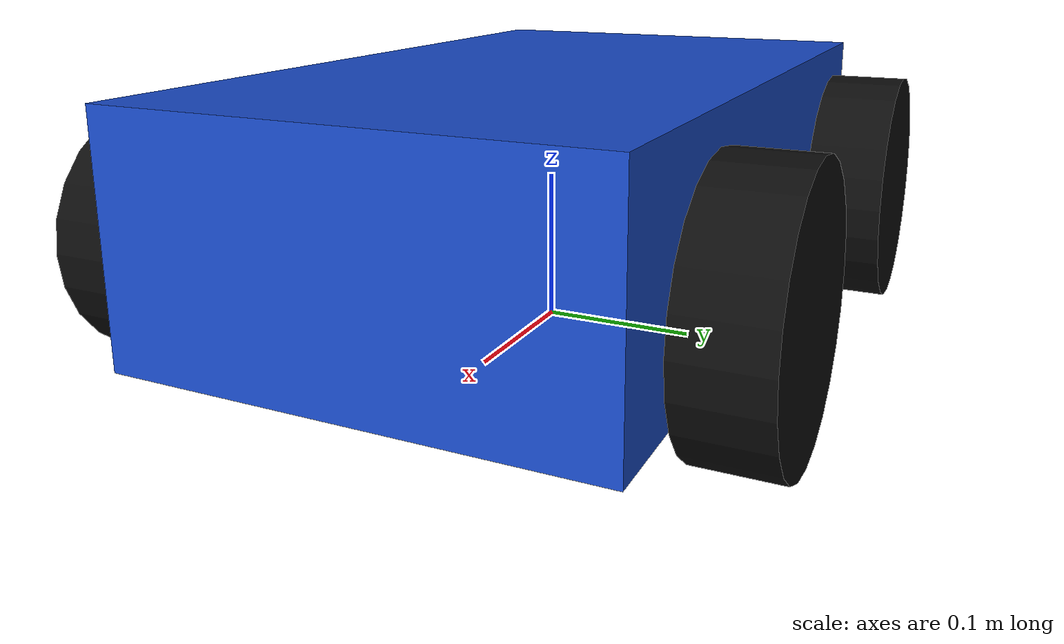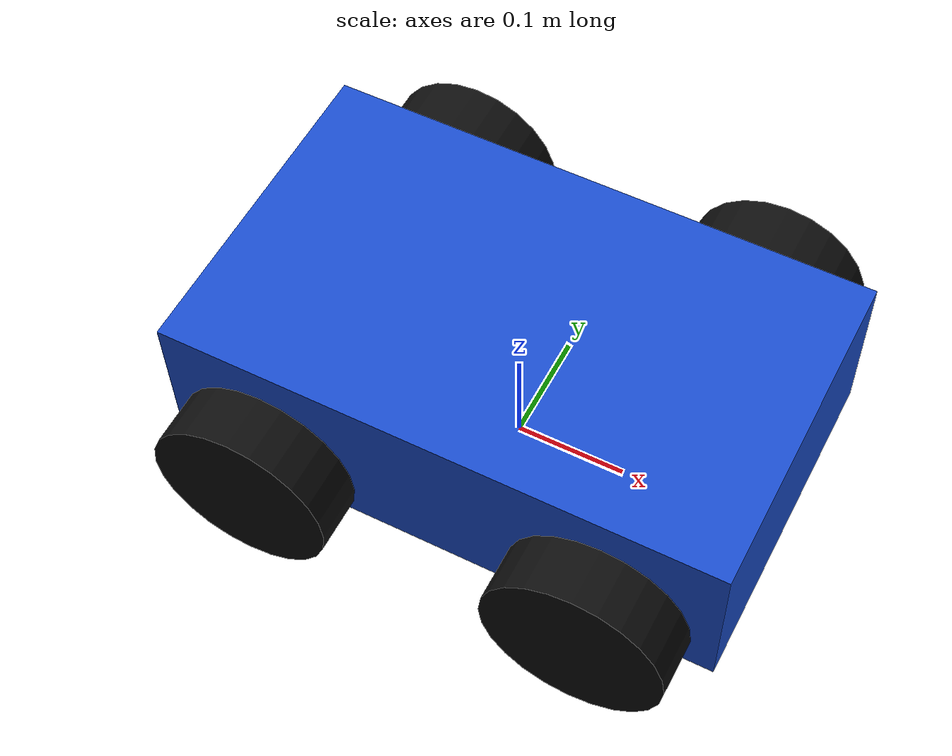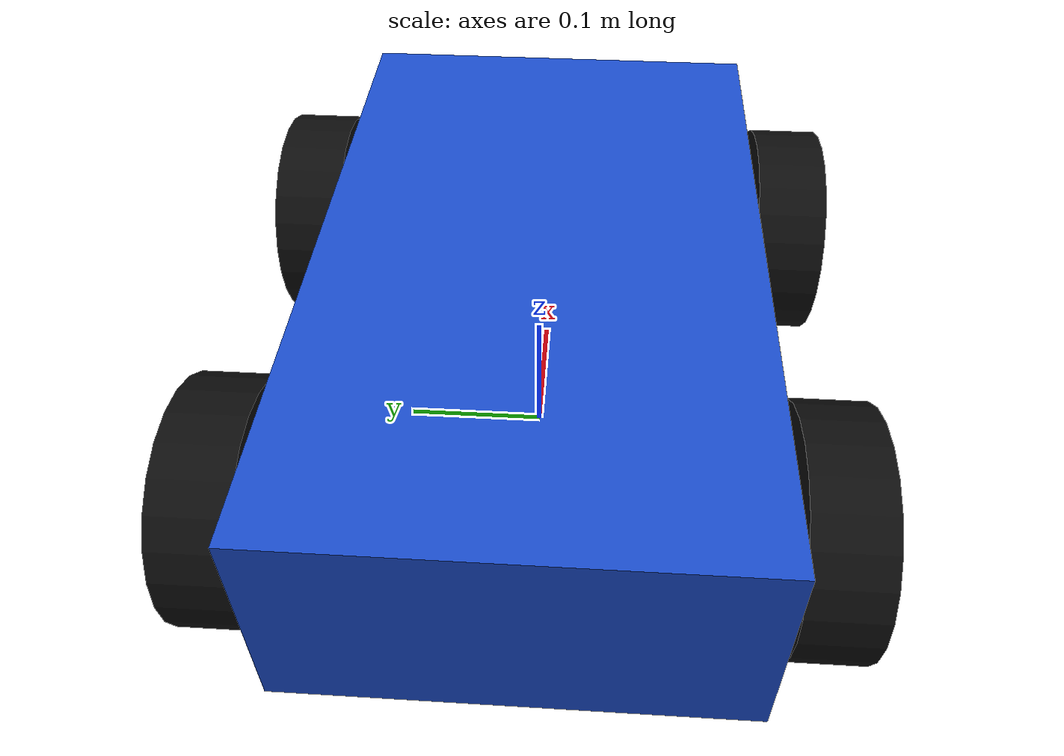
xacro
<?xml version="1.0"?>
<robot xmlns:xacro="http://www.ros.org/wiki/xacro" name="four_wheeled_robot">
  <!-- Dimensions, masses, and inertia macros. -->
  <xacro:include filename="properties.xacro"/>
  <!-- Named colours. -->
  <xacro:include filename="materials.xacro"/>
  <!-- base_footprint + base_link chassis. -->
  <xacro:include filename="chassis.xacro"/>
  <!-- The reusable wheel macro. -->
  <xacro:include filename="wheel.xacro"/>

  <!-- Four macro calls: front/rear come from the sign of x_offset, left/right
       from the sign of y_offset. Y is negated for the right-hand side. -->
  <xacro:wheel name="front_left_wheel" parent="base_link" x_offset="${wheel_offset_x}" y_offset="${wheel_offset_y}" z_offset="${wheel_offset_z}"/>
  <xacro:wheel name="front_right_wheel" parent="base_link" x_offset="${wheel_offset_x}" y_offset="-${wheel_offset_y}" z_offset="${wheel_offset_z}"/>
  <xacro:wheel name="rear_left_wheel" parent="base_link" x_offset="-${wheel_offset_x}" y_offset="${wheel_offset_y}" z_offset="${wheel_offset_z}"/>
  <xacro:wheel name="rear_right_wheel" parent="base_link" x_offset="-${wheel_offset_x}" y_offset="-${wheel_offset_y}" z_offset="${wheel_offset_z}"/>
</robot>

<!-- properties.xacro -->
<robot xmlns:xacro="http://www.ros.org/wiki/xacro">
  <!-- Pi, needed for the wheel cylinder roll angle (pi/2 = 90 deg). -->
  <xacro:property name="pi_val" value="3.1415926535897931"/>

  <!-- Chassis box: 0.5 x 0.3 x 0.15 m, 5 kg, raised 0.10 m above the ground. -->
  <xacro:property name="chassis_length" value="0.5"/>
  <xacro:property name="chassis_width" value="0.3"/>
  <xacro:property name="chassis_height" value="0.15"/>
  <xacro:property name="chassis_mass" value="5.0"/>
  <xacro:property name="chassis_elevation" value="0.10"/>

  <!-- Wheels: 0.08 m radius, 0.05 m thick, 0.5 kg each. -->
  <xacro:property name="wheel_radius" value="0.08"/>
  <xacro:property name="wheel_width" value="0.05"/>
  <xacro:property name="wheel_mass" value="0.5"/>

  <!-- Wheel mounting offsets from base_link. Halves of the wheelbase (0.30 m)
       and track width (0.37 m); -0.02 keeps the wheels just below the box. -->
  <xacro:property name="wheel_offset_x" value="0.15"/>
  <xacro:property name="wheel_offset_y" value="0.185"/>
  <xacro:property name="wheel_offset_z" value="-0.02"/>

  <xacro:macro name="box_inertia" params="m x y z">
    <inertial>
      <mass value="${m}"/>
      <inertia ixx="${(m/12.0) * (y*y + z*z)}" ixy="0.0" ixz="0.0"
               iyy="${(m/12.0) * (x*x + z*z)}" iyz="0.0"
               izz="${(m/12.0) * (x*x + y*y)}"/>
    </inertial>
  </xacro:macro>

  <!-- Inertia macro for a solid cylinder whose spin axis is local Y.
       Transverse: Ixx=Izz=m/12*(3r^2+h^2); axial: Iyy=m/2*r^2. -->
  <xacro:macro name="cylinder_inertia" params="m r h">
    <inertial>
      <mass value="${m}"/>
      <inertia ixx="${(m/12.0) * (3*r*r + h*h)}" ixy="0.0" ixz="0.0"
               iyy="${(m/2.0) * (r*r)}" iyz="0.0"
               izz="${(m/12.0) * (3*r*r + h*h)}"/>
    </inertial>
  </xacro:macro>
</robot>

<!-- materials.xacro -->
<robot xmlns:xacro="http://www.ros.org/wiki/xacro">
  <material name="blue">
    <color rgba="0.1 0.3 0.8 1.0"/>
  </material>
  <material name="black">
    <color rgba="0.05 0.05 0.05 1.0"/>
  </material>
  <material name="white">
    <color rgba="0.9 0.9 0.9 1.0"/>
  </material>
  <material name="grey">
    <color rgba="0.4 0.4 0.4 1.0"/>
  </material>
  <material name="dark_grey">
    <color rgba="0.2 0.2 0.2 1.0"/>
  </material>
  <material name="orange">
    <color rgba="1.0 0.42 0.04 1.0"/>
  </material>
</robot>

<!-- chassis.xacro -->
<!--
  Stage 3: the robot body — base_footprint (ground frame) and base_link
  (chassis box). All numbers come from properties.xacro, so nothing here
  needs editing to resize the robot.
-->
<robot xmlns:xacro="http://www.ros.org/wiki/xacro">
  <!-- Dummy frame pinned to the floor; RViz uses it as the fixed frame. -->
  <link name="base_footprint"/>

  <!-- Fixed joint that lifts the chassis to its riding height. -->
  <joint name="base_footprint_joint" type="fixed">
    <parent link="base_footprint"/>
    <child link="base_link"/>
    <origin xyz="0 0 ${chassis_elevation}" rpy="0 0 0"/>
  </joint>

  <link name="base_link">
    <!-- Visual: what RViz draws (same box as the collision volume). -->
    <visual>
      <origin xyz="0 0 0" rpy="0 0 0"/>
      <geometry>
        <box size="${chassis_length} ${chassis_width} ${chassis_height}"/>
      </geometry>
      <material name="blue"/>
    </visual>
    <!-- Collision: the volume a physics engine / planner would use. -->
    <collision>
      <origin xyz="0 0 0" rpy="0 0 0"/>
      <geometry>
        <box size="${chassis_length} ${chassis_width} ${chassis_height}"/>
      </geometry>
    </collision>
    <!-- Inertia is generated from the same dimensions and mass. -->
    <xacro:box_inertia m="${chassis_mass}" x="${chassis_length}" y="${chassis_width}" z="${chassis_height}"/>
  </link>
</robot>

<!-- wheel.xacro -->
<robot xmlns:xacro="http://www.ros.org/wiki/xacro">
  <!-- name: prefix for the joint/link names (e.g. front_left_wheel).
       parent: chassis link the wheel hangs off.
       *_offset: mounting position of the wheel centre in the parent frame. -->
  <xacro:macro name="wheel" params="name parent x_offset y_offset z_offset">
    <joint name="${name}_joint" type="continuous">
      <origin xyz="${x_offset} ${y_offset} ${z_offset}" rpy="0 0 0"/>
      <parent link="${parent}"/>
      <child link="${name}_link"/>
      <!-- Rotate about local Y: the wheel axle points sideways. -->
      <axis xyz="0 1 0"/>
      <!-- No position limits (continuous); only effort/velocity caps. -->
      <limit effort="10.0" velocity="20.0"/>
    </joint>

    <link name="${name}_link">
      <!-- URDF cylinders are built along Z, so roll by 90 deg to align the
           cylinder axis with the joint's Y rotation axis. -->
      <visual>
        <origin xyz="0 0 0" rpy="${pi_val/2} 0 0"/>
        <geometry>
          <cylinder radius="${wheel_radius}" length="${wheel_width}"/>
        </geometry>
        <material name="black"/>
      </visual>
      <collision>
        <origin xyz="0 0 0" rpy="${pi_val/2} 0 0"/>
        <geometry>
          <cylinder radius="${wheel_radius}" length="${wheel_width}"/>
        </geometry>
      </collision>
      <xacro:cylinder_inertia m="${wheel_mass}" r="${wheel_radius}" h="${wheel_width}"/>
    </link>
  </xacro:macro>
</robot>
